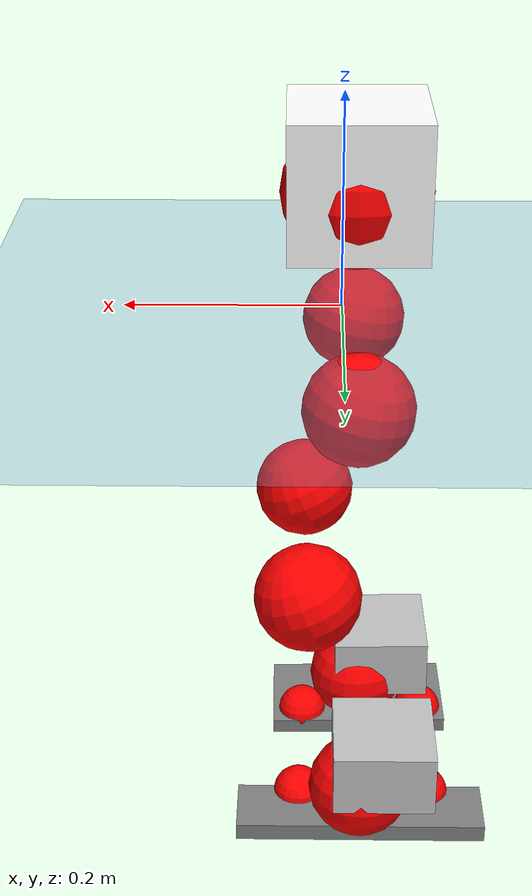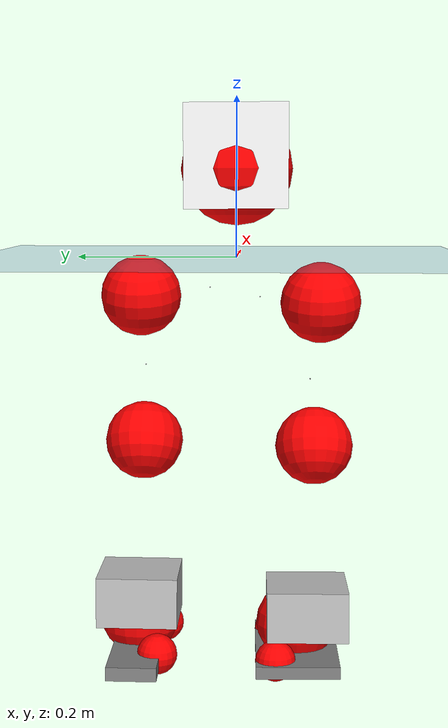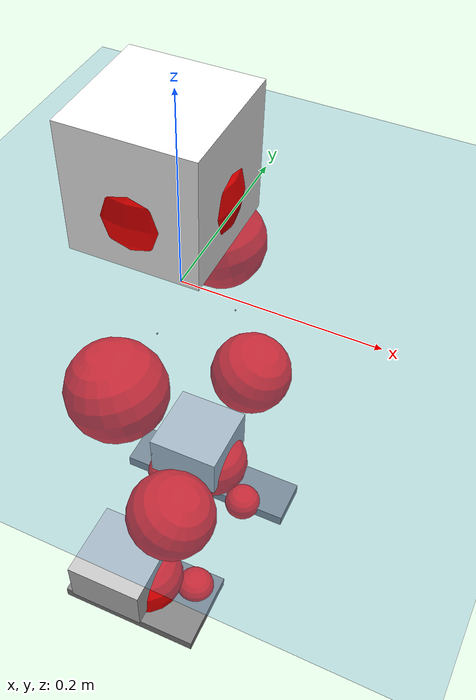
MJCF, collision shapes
<mujoco model="pi_12dof_release_v1">
  <compiler angle="radian" assetdir="assets" balanceinertia="true" inertiafromgeom="false"/>

  <option timestep="0.005" density="1.2" viscosity="2e-05"/>

  <size nkey="1"/>

  <visual>
    <quality shadowsize="8192"/>
    <map shadowclip="0.5"/>
  </visual>

  <default>
    <default class="/">
      <joint armature="0.01" damping="0.01" frictionloss="0.01"/>
      <geom contype="0" conaffinity="0" group="1" solref="-1000 -80"/>
      <site size="0.01 0.005 0.005" group="5"/>
      <general forcelimited="true" biastype="affine" gainprm="20" biasprm="0 -20 -0.5"/>
      <default class="foot">
        <geom size="0.0845 0.036 0.005" type="box" condim="6" group="4" priority="1" friction="0.9 0.2 0.2" solimp="0.015 1 0.005"/>
      </default>
      <default class="reward_collision_sphere">
        <geom group="5" rgba="1 0 0 1"/>
      </default>
    </default>
  </default>

  <asset>
    <texture type="skybox" colorspace="auto" name="//unnamed_texture_0" builtin="gradient" rgb1="0.95 0.95 0.95" rgb2="0.95 0.95 0.95" width="100" height="600"/>
    <texture type="2d" colorspace="auto" name="texplane" builtin="checker" rgb1="0.345 0.575 0.748" rgb2="0.345 0.575 0.748" markrgb="1 1 1" width="512" height="512"/>
    <material name="MatPlane" class="/" texture="texplane" texuniform="true" texrepeat="2 2" specular="0.9"/>
    <mesh name="baselink_1" class="/" file="baselink_1.STL"/>
    <mesh name="r_hip_pitch_link" class="/" file="r_hip_pitch_link.STL"/>
    <mesh name="r_hip_roll_link" class="/" file="r_hip_roll_link.STL"/>
    <mesh name="r_thigh_link" class="/" file="r_thigh_link.STL"/>
    <mesh name="r_calf_link" class="/" file="r_calf_link.STL"/>
    <mesh name="r_ankle_pitch_link" class="/" file="r_ankle_pitch_link.STL"/>
    <mesh name="r_ankle_roll_link" class="/" file="r_ankle_roll_link.STL"/>
    <mesh name="l_hip_pitch_link" class="/" file="l_hip_pitch_link.STL"/>
    <mesh name="l_hip_roll_link" class="/" file="l_hip_roll_link.STL"/>
    <mesh name="l_thigh_link" class="/" file="l_thigh_link.STL"/>
    <mesh name="l_calf_link" class="/" file="l_calf_link.STL"/>
    <mesh name="l_ankle_pitch_link" class="/" file="l_ankle_pitch_link.STL"/>
    <mesh name="l_ankle_roll_link" class="/" file="l_ankle_roll_link.STL"/>
  </asset>

  <worldbody>
    <geom name="floor" class="/" size="100 100 0.125" type="plane" group="0" material="MatPlane"/>
    <light name="toplight_shadow" class="/" pos="0 0 5" dir="0.0990148 0.0990148 -0.990148" type="directional" ambient="0.04 0.04 0.04" diffuse="0.55 0.55 0.55" specular="0.12 0.12 0.12"/>
    <light name="toplight_fill" class="/" pos="0 0 5" dir="0.0990148 0.0990148 -0.990148" type="directional" castshadow="false" ambient="0.04 0.04 0.04" diffuse="0.3 0.3 0.3" specular="0.08 0.08 0.08"/>
    <body name="trunk" pos="-0.0125145 -0.00101031 0.00490102" quat="0.999985 -0.00212069 0.000523085 0.00508407">
      <inertial pos="0.0140494 -0.00477452 0.0608113" quat="0.697211 0.00990343 0.00671534 0.716766" mass="4.74438" diaginertia="0.0062773 0.0390049 0.0284882"/>
      <joint name="//unnamed_joint_0" type="free"/>
      <geom name="//unnamed_geom_1" class="/" type="mesh" density="0" rgba="1 1 1 1" mesh="baselink_1"/>
      <geom name="//unnamed_geom_2" class="/" size="0.0629498 0.0629498 0.0629498" pos="0 0 0.119825" type="box" rgba="1 1 1 1"/>
      <geom name="//unnamed_geom_3" class="reward_collision_sphere" size="0.0692448" pos="0 0 0.104847"/>
      <site name="imu" class="/" pos="-0.00413272 -0.0290213 -0.0531194" size="0.01259"/>
      <camera name="track" class="/" pos="0 -2.70895 0" quat="0.707107 0.707107 0 0" mode="trackcom"/>
      <camera name="ego_camera" class="/" pos="0.0693529 0 0.269606" quat="-0.5 -0.5 0.5 0.5"/>
      <body name="r_hip_pitch_link" pos="0.000860106 -0.0290602 -0.0533835" quat="0.992142 0.00188941 -0.125094 -0.00133105">
        <inertial pos="-0.000448509 -0.0668365 1.20149e-05" quat="-0.0175472 0.707485 -0.02928 0.705903" mass="0.770325" diaginertia="6.07813e-05 0.000409464 0.000623833"/>
        <joint name="r_hip_pitch_joint" class="/" pos="0 0 0" axis="0.0172105 -0.999668 -0.0191597" stiffness="0.0100101" range="-1.64381 1.24109" armature="0.0145265" damping="0" frictionloss="0.00743099"/>
        <geom name="//unnamed_geom_4" class="/" type="mesh" density="0" rgba="0.75294 0.75294 0.75294 1" mesh="r_hip_pitch_link"/>
        <geom name="//unnamed_geom_5" class="/" size="0.000629498 0.000629498 0.000629498" type="box" rgba="0.75294 0.75294 0.75294 1"/>
        <body name="r_hip_roll_link" pos="-0.0049103 -0.0757392 -0.0059032" quat="0.999988 0.000586552 0.00372855 0.00308387">
          <inertial pos="-0.00944985 0.0072881 -0.0802512" quat="0.706297 -0.0770213 -0.0829798 0.698803" mass="0.84105" diaginertia="0.000232732 0.00141255 0.000893555"/>
          <joint name="r_hip_roll_joint" class="/" pos="0 0 0" axis="-0.999158 -0.000860895 0.0410307" stiffness="0.00735629" range="-0.0754228 0.656008" armature="0.0148589" damping="0.057999" frictionloss="0.00664948"/>
          <geom name="//unnamed_geom_6" class="/" type="mesh" density="0" rgba="0.75294 0.75294 0.75294 1" mesh="r_hip_roll_link"/>
          <geom name="//unnamed_geom_7" class="/" size="0.000629498 0.000629498 0.000629498" type="box" rgba="0.75294 0.75294 0.75294 1"/>
          <geom name="//unnamed_geom_8" class="reward_collision_sphere" size="0.0503599"/>
          <body name="r_thigh_link" pos="0.000323741 0.0110212 -0.102932" quat="0.999994 -0.00280879 0.000337272 -0.00187166">
            <inertial pos="0.00927911 -0.000262432 -0.0785429" quat="0.749584 0.66189 -0.00396826 -0.00322361" mass="0.218557" diaginertia="7.652e-05 0.000330593 0.000354644"/>
            <joint name="r_thigh_joint" class="/" pos="0 0 0" axis="0.0105265 -0.00575423 -0.999928" stiffness="0.0309543" range="-0.123393 0.465305" armature="0.0161929" damping="0.000309869" frictionloss="0.0205155"/>
            <geom name="//unnamed_geom_9" class="/" type="mesh" density="0" rgba="0.75294 0.75294 0.75294 1" mesh="r_thigh_link"/>
            <geom name="//unnamed_geom_10" class="/" size="0.000629498 0.000629498 0.000629498" type="box" rgba="0.75294 0.75294 0.75294 1"/>
            <body name="r_calf_link" pos="0.000334977 -0.00597572 -0.0940052" quat="0.948008 -0.0018097 0.318219 0.00373263">
              <inertial pos="-0.00580203 0.00865392 -0.106896" quat="0.998605 -0.0196334 0.00974792 0.0480465" mass="1.64589" diaginertia="0.00282603 0.0171272 0.00153881"/>
              <joint name="r_calf_joint" class="/" pos="0 0 0" axis="-0.00360039 -0.998782 -0.0492036" stiffness="0.0487248" range="-1.89036 0.643414" armature="0.013131" damping="0.000820727" frictionloss="0.00727094"/>
              <geom name="//unnamed_geom_11" class="/" type="mesh" density="0" rgba="0.75294 0.75294 0.75294 1" mesh="r_calf_link"/>
              <geom name="//unnamed_geom_12" class="/" size="0.000629498 0.000629498 0.000629498" type="box" rgba="0.75294 0.75294 0.75294 1"/>
              <geom name="//unnamed_geom_13" class="reward_collision_sphere" size="0.0503599"/>
              <body name="r_ankle_pitch_link" pos="0.000348895 0.0124669 -0.208421" quat="0.980086 -0.000166571 -0.198573 0.000752231">
                <inertial pos="-0.00162279 0.0131911 -0.000716804" quat="-0.00201654 0.685584 0.0164531 0.727805" mass="0.341853" diaginertia="0.000219234 0.00111429 0.000846848"/>
                <joint name="r_ankle_pitch_joint" class="/" pos="0 0 0" axis="-0.0545974 -0.998426 0.0128496" stiffness="0.00198062" range="-1.3919 0.485268" armature="0.0131754" damping="0.0462172" frictionloss="0.00876091"/>
                <geom name="//unnamed_geom_14" class="/" type="mesh" density="0" rgba="0.75294 0.75294 0.75294 1" mesh="r_ankle_pitch_link"/>
                <geom name="//unnamed_geom_15" class="/" size="0.0491009 0.0503599 0.0314749" type="box" rgba="0.75294 0.75294 0.75294 1"/>
                <body name="r_ankle_roll_link" pos="0.0707001 0.0128828 0.00350298" quat="1 0.000117867 -2.95211e-05 0.00013242">
                  <inertial pos="-0.0235759 0.00150144 -0.0204532" quat="0.599917 0.410658 0.433834 0.532209" mass="1.01446" diaginertia="0.000760413 0.00467837 0.00234167"/>
                  <joint name="r_ankle_roll_joint" class="/" pos="0 0 0" axis="-0.998242 0.0588769 -0.00679894" range="0.0673667 0.178069" armature="0.0060671" damping="0.000871394" frictionloss="0.0116319"/>
                  <geom name="//unnamed_geom_16" class="/" type="mesh" density="0" rgba="0.75294 0.75294 0.75294 1" mesh="r_ankle_roll_link"/>
                  <geom name="//unnamed_geom_17" class="/" type="mesh" rgba="0.75294 0.75294 0.75294 1" mesh="r_ankle_roll_link"/>
                  <geom name="right_foot" class="foot" size="0.0919978 0.0516852 0.00764462" pos="-0.04716 0 -0.0659036"/>
                  <geom name="//unnamed_geom_19" class="reward_collision_sphere" size="0.0503599" pos="-0.0462352 0 -0.0299562"/>
                  <geom name="//unnamed_geom_20" class="reward_collision_sphere" size="0.0251799" pos="0.0138706 0.0270895 -0.0599124"/>
                  <geom name="//unnamed_geom_21" class="reward_collision_sphere" size="0.0251799" pos="-0.110965 0.0270895 -0.0599124"/>
                  <site name="right_foot" class="foot" pos="-0.04716 0 -0.0659036" size="0.01259"/>
                </body>
              </body>
            </body>
          </body>
        </body>
      </body>
      <body name="l_hip_pitch_link" pos="-0.00225941 0.033329 -0.0412559" quat="0.99224 -0.000277139 -0.12433 -0.000937944">
        <inertial pos="-0.00285599 0.0621178 0.00780052" quat="-0.0454824 0.747017 0.00790153 0.6632" mass="0.657138" diaginertia="8.62078e-05 0.000462471 0.000647277"/>
        <joint name="l_hip_pitch_joint" class="/" pos="0 0 0" axis="-0.050634 0.998093 -0.0352926" stiffness="0.0169815" range="-1.3116 1.7751" armature="0.0135314" damping="0" frictionloss="0.0131636"/>
        <geom name="//unnamed_geom_22" class="/" type="mesh" density="0" rgba="0.75294 0.75294 0.75294 1" mesh="l_hip_pitch_link"/>
        <geom name="//unnamed_geom_23" class="/" size="0.000629498 0.000629498 0.000629498" type="box" rgba="0.75294 0.75294 0.75294 1"/>
        <body name="l_hip_roll_link" pos="-0.0008196 0.0869226 -0.0103804" quat="1 1.34322e-05 5.03741e-07 -2.87179e-05">
          <inertial pos="-4.11893e-05 0.00037461 -0.091606" quat="0.704904 -0.0792546 -0.0911655 0.698941" mass="0.644467" diaginertia="0.000222989 0.00122345 0.000858681"/>
          <joint name="l_hip_roll_joint" class="/" pos="0 0 0" axis="-0.999883 0.00568296 0.0142294" stiffness="0.0634141" range="-0.50358 -0.0615549" armature="0.0153408" damping="0" frictionloss="0.0146302"/>
          <geom name="//unnamed_geom_24" class="/" type="mesh" density="0" rgba="0.75294 0.75294 0.75294 1" mesh="l_hip_roll_link"/>
          <geom name="//unnamed_geom_25" class="/" size="0.000629498 0.000629498 0.000629498" type="box" rgba="0.75294 0.75294 0.75294 1"/>
          <geom name="//unnamed_geom_26" class="reward_collision_sphere" size="0.0503599"/>
          <body name="l_thigh_link" pos="-0.00142892 -0.0034382 -0.0926177" quat="1 2.60886e-05 0.000425104 0.000402601">
            <inertial pos="0.00333041 -0.0136376 -0.0709651" quat="0.693436 0.720405 0.0127629 0.000605832" mass="0.216886" diaginertia="8.71799e-05 0.000421356 0.000484215"/>
            <joint name="l_thigh_joint" class="/" pos="0 0 0" axis="0.0103281 0.0124069 -0.99987" range="-0.579203 0.143912" armature="0.00944717" damping="0.0565643" frictionloss="0.00910706"/>
            <geom name="//unnamed_geom_27" class="/" type="mesh" density="0" rgba="0.75294 0.75294 0.75294 1" mesh="l_thigh_link"/>
            <geom name="//unnamed_geom_28" class="/" size="0.000629498 0.000629498 0.000629498" type="box" rgba="0.75294 0.75294 0.75294 1"/>
            <body name="l_calf_link" pos="-0.00393828 0.0053285 -0.104944" quat="0.948661 0.00452893 0.316258 -0.00156315">
              <inertial pos="-0.0116287 -0.00301827 -0.0926752" quat="0.999266 0.0328102 0.00827873 -0.0179325" mass="1.63841" diaginertia="0.00235888 0.0158321 0.00131822"/>
              <joint name="l_calf_joint" class="/" pos="0 0 0" axis="0.0253607 0.999604 0.0121741" stiffness="0.00823378" range="-0.649594 1.77756" armature="0.0111614" damping="0.0123443" frictionloss="0.0186902"/>
              <geom name="//unnamed_geom_29" class="/" type="mesh" density="0" rgba="0.75294 0.75294 0.75294 1" mesh="l_calf_link"/>
              <geom name="//unnamed_geom_30" class="/" size="0.000629498 0.000629498 0.000629498" type="box" rgba="0.75294 0.75294 0.75294 1"/>
              <geom name="//unnamed_geom_31" class="reward_collision_sphere" size="0.0503599"/>
              <body name="l_ankle_pitch_link" pos="0.002347 -0.000838845 -0.197819" quat="0.98008 0.000418339 -0.1986 -0.000328573">
                <inertial pos="0.00407936 8.06074e-05 -0.00044059" quat="-0.00405962 0.70875 0.00957668 0.705383" mass="0.393247" diaginertia="0.00020889 0.000919448 0.000914075"/>
                <joint name="l_ankle_pitch_joint" class="/" pos="0 0 0" axis="0.00976303 0.999908 -0.00942147" stiffness="0.02999" range="-0.507017 1.32664" armature="0.0126509" damping="0.015209" frictionloss="0.00976022"/>
                <geom name="//unnamed_geom_32" class="/" type="mesh" density="0" rgba="0.75294 0.75294 0.75294 1" mesh="l_ankle_pitch_link"/>
                <geom name="//unnamed_geom_33" class="/" size="0.0491009 0.0503599 0.0314749" type="box" rgba="0.75294 0.75294 0.75294 1"/>
                <body name="l_ankle_roll_link" pos="0.0683093 0.00168641 -0.00575355" quat="1 -0.00033079 0.000182691 -0.000494139">
                  <inertial pos="-0.0140993 0.000126532 -0.0236863" quat="0.579969 0.416318 0.419317 0.560793" mass="1.01086" diaginertia="0.000722209 0.00474097 0.00186763"/>
                  <joint name="l_ankle_roll_joint" class="/" pos="0 0 0" axis="-0.998333 0.0566484 -0.0110834" stiffness="0.0489292" range="-0.182272 0.0589873" armature="0.0145539" damping="0" frictionloss="0.0150881"/>
                  <geom name="//unnamed_geom_34" class="/" type="mesh" density="0" rgba="0.75294 0.75294 0.75294 1" mesh="l_ankle_roll_link"/>
                  <geom name="//unnamed_geom_35" class="/" type="mesh" rgba="0.75294 0.75294 0.75294 1" mesh="l_ankle_roll_link"/>
                  <geom name="left_foot" class="foot" size="0.121995 0.0308026 0.00857509" pos="-0.04716 0 -0.0659036"/>
                  <geom name="//unnamed_geom_37" class="reward_collision_sphere" size="0.0503599" pos="-0.0462352 0 -0.0299562"/>
                  <geom name="//unnamed_geom_38" class="reward_collision_sphere" size="0.0251799" pos="0.0138706 -0.0270895 -0.0599124"/>
                  <geom name="//unnamed_geom_39" class="reward_collision_sphere" size="0.0251799" pos="-0.110965 -0.0270895 -0.0599124"/>
                  <site name="left_foot" class="foot" pos="-0.04716 0 -0.0659036" size="0.01259"/>
                </body>
              </body>
            </body>
          </body>
        </body>
      </body>
    </body>
  </worldbody>

  <contact>
    <pair class="/" geom1="floor" geom2="right_foot" name="//unnamed_contact_1"/>
    <pair class="/" geom1="floor" geom2="left_foot" name="//unnamed_contact_0"/>
  </contact>

  <actuator>
    <general name="r_hip_pitch_joint" class="/" joint="r_hip_pitch_joint" forcerange="-24.8955 24.8955" gainprm="26.2262" biasprm="0 -26.2262 -0.566814"/>
    <general name="r_hip_roll_joint" class="/" joint="r_hip_roll_joint" forcerange="-19.9905 19.9905" gainprm="26.2262" biasprm="0 -26.2262 -0.566814"/>
    <general name="r_thigh_joint" class="/" joint="r_thigh_joint" forcerange="-27.0468 27.0468" gainprm="26.2262" biasprm="0 -26.2262 -0.566814"/>
    <general name="r_calf_joint" class="/" joint="r_calf_joint" forcerange="-14.2974 14.2974" gainprm="26.2262" biasprm="0 -26.2262 -0.566814"/>
    <general name="r_ankle_pitch_joint" class="/" joint="r_ankle_pitch_joint" forcerange="-25.4656 25.4656" gainprm="26.2262" biasprm="0 -26.2262 -0.566814"/>
    <general name="r_ankle_roll_joint" class="/" joint="r_ankle_roll_joint" forcerange="-36.9765 36.9765" gainprm="26.2262" biasprm="0 -26.2262 -0.566814"/>
    <general name="l_hip_pitch_joint" class="/" joint="l_hip_pitch_joint" forcerange="-27.4458 27.4458" gainprm="26.2262" biasprm="0 -26.2262 -0.566814"/>
    <general name="l_hip_roll_joint" class="/" joint="l_hip_roll_joint" forcerange="-32.0199 32.0199" gainprm="26.2262" biasprm="0 -26.2262 -0.566814"/>
    <general name="l_thigh_joint" class="/" joint="l_thigh_joint" forcerange="-26.3311 26.3311" gainprm="26.2262" biasprm="0 -26.2262 -0.566814"/>
    <general name="l_calf_joint" class="/" joint="l_calf_joint" forcerange="-25.1594 25.1594" gainprm="26.2262" biasprm="0 -26.2262 -0.566814"/>
    <general name="l_ankle_pitch_joint" class="/" joint="l_ankle_pitch_joint" forcerange="-20.9658 20.9658" gainprm="26.2262" biasprm="0 -26.2262 -0.566814"/>
    <general name="l_ankle_roll_joint" class="/" joint="l_ankle_roll_joint" forcerange="-24.6981 24.6981" gainprm="26.2262" biasprm="0 -26.2262 -0.566814"/>
  </actuator>

  <sensor>
    <gyro site="imu" name="imu_angular_velocity"/>
    <velocimeter site="imu" name="imu_linear_velocity"/>
    <framelinvel objtype="site" objname="left_foot" name="left_foot_global_linear_velocity"/>
    <framelinvel objtype="site" objname="right_foot" name="right_foot_global_linear_velocity"/>
  </sensor>

  <keyframe>
    <key name="home" qpos="0 0 0.291 1 0 0 0 0.4 0 0 -0.8 0.4 0 -0.4 0 0 0.8 -0.4 0"/>
  </keyframe>
</mujoco>
